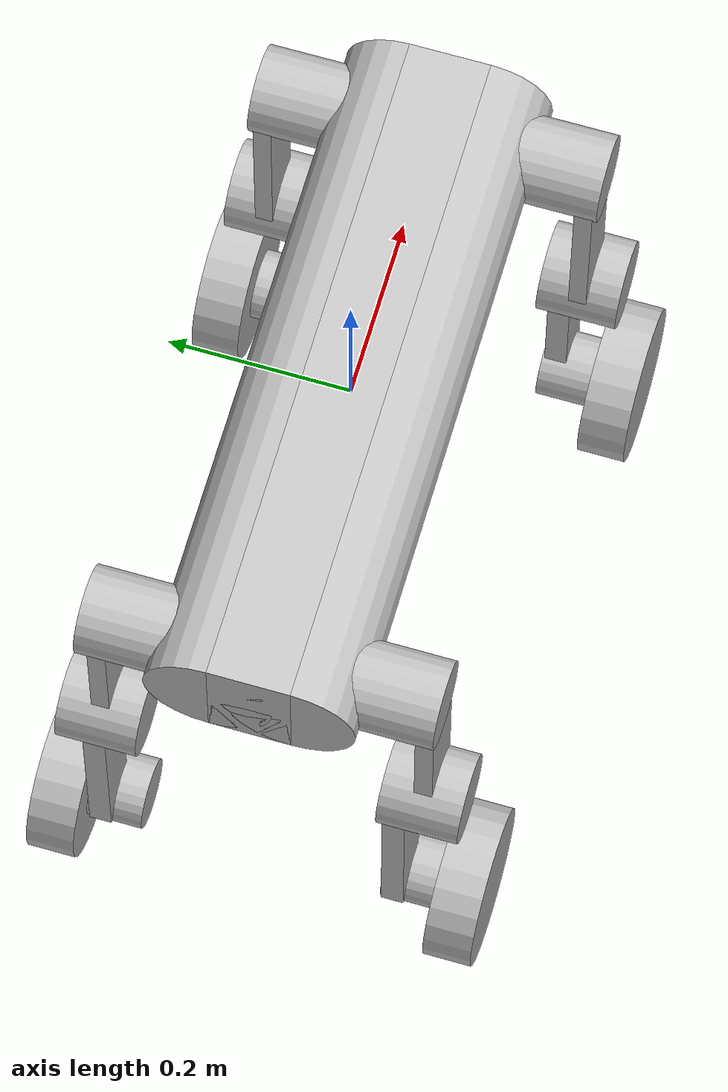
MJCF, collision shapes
<?xml version='1.0' encoding='utf-8'?>
<mujoco model="M20">
  <compiler angle="radian" meshdir=".." boundmass="1e-06" boundinertia="1e-08" />
  <asset>
    <mesh name="mesh_0" content_type="model/stl" file="meshes/base_link.STL" />
    <mesh name="mesh_1" content_type="model/stl" file="meshes/fl_hipx.STL" />
    <mesh name="mesh_2" content_type="model/stl" file="meshes/fl_hipy.STL" />
    <mesh name="mesh_3" content_type="model/stl" file="meshes/fl_knee.STL" />
    <mesh name="mesh_4" content_type="model/stl" file="meshes/fl_wheel.STL" />
    <mesh name="mesh_5" content_type="model/stl" file="meshes/fr_hipx.STL" />
    <mesh name="mesh_6" content_type="model/stl" file="meshes/fr_hipy.STL" />
    <mesh name="mesh_7" content_type="model/stl" file="meshes/fr_knee.STL" />
    <mesh name="mesh_8" content_type="model/stl" file="meshes/fr_wheel.STL" />
    <mesh name="mesh_9" content_type="model/stl" file="meshes/hl_hipx.STL" />
    <mesh name="mesh_10" content_type="model/stl" file="meshes/hl_hipy.STL" />
    <mesh name="mesh_11" content_type="model/stl" file="meshes/hl_knee.STL" />
    <mesh name="mesh_12" content_type="model/stl" file="meshes/hl_wheel.STL" />
    <mesh name="mesh_13" content_type="model/stl" file="meshes/hr_hipx.STL" />
    <mesh name="mesh_14" content_type="model/stl" file="meshes/hr_hipy.STL" />
    <mesh name="mesh_15" content_type="model/stl" file="meshes/hr_knee.STL" />
    <mesh name="mesh_16" content_type="model/stl" file="meshes/hr_wheel.STL" />
  </asset>
  <worldbody>
    <body name="base_link">
      <inertial pos="0.00355106 0.00165076 -0.00346462" quat="0.0072051 0.70717 0.00499223 0.706989" mass="15.882" diaginertia="0.563924 0.533811 0.0880743" />
      <joint type="free" />
      <geom type="mesh" contype="0" conaffinity="0" group="1" density="0" rgba="0.752941 0.752941 0.752941 1" mesh="mesh_0" />
      <geom size="0.375 0.045 0.07" type="box" rgba="0.752941 0.752941 0.752941 1" />
      <geom size="0.07 0.375" pos="0 0.045 0" quat="0.707107 0 0.707107 0" type="cylinder" rgba="0.752941 0.752941 0.752941 1" />
      <geom size="0.07 0.375" pos="0 -0.045 0" quat="0.707107 0 0.707107 0" type="cylinder" rgba="0.752941 0.752941 0.752941 1" />
      <body name="fl_hipx" pos="0.3141 0.0685 0">
        <inertial pos="-0.0111893 0.00891693 0.000405666" quat="0.583127 0.477921 0.46978 0.459196" mass="0.26136" diaginertia="0.000375361 0.000288067 0.000181572" />
        <joint name="fl_hipx_joint" pos="0 0 0" axis="-1 0 0" range="-0.611 0.436" actuatorfrcrange="-76.4 76.4" />
        <geom type="mesh" contype="0" conaffinity="0" group="1" density="0" rgba="0.752941 0.752941 0.752941 1" mesh="mesh_1" />
        <geom size="0.048 0.07" pos="0 0.055 0" quat="0.707107 0.707107 0 0" type="cylinder" rgba="0.752941 0.752941 0.752941 1" />
        <body name="fl_hipy">
          <inertial pos="-0.00199375 0.098439 -0.130664" quat="0.675046 -0.0565515 0.062233 0.732968" mass="2.493" diaginertia="0.0390587 0.0388577 0.00283061" />
          <joint name="fl_hipy_joint" pos="0 0 0" axis="0 -1 0" range="-2.583 2.286" actuatorfrcrange="-76.4 76.4" />
          <geom type="mesh" contype="0" conaffinity="0" group="1" density="0" rgba="0.752941 0.752941 0.752941 1" mesh="mesh_2" />
          <geom size="0.035 0.01 0.125" pos="-0.01 0.11 -0.125" type="box" rgba="0.752941 0.752941 0.752941 1" />
          <geom size="0.05 0.045" pos="0 0.11 -0.25" quat="0.707107 0.707107 0 0" type="cylinder" rgba="0.752941 0.752941 0.752941 1" />
          <body name="fl_knee" pos="0 0.0984 -0.25">
            <inertial pos="0.00341917 0.00269124 -0.181265" quat="0.634837 -0.0526578 0.0490086 0.76929" mass="1.26" diaginertia="0.0133811 0.0129238 0.00143607" />
            <joint name="fl_knee_joint" pos="0 0 0" axis="0 -1 0" range="-2.792 2.809" actuatorfrcrange="-76.4 76.4" />
            <geom type="mesh" contype="0" conaffinity="0" group="1" density="0" rgba="0.752941 0.752941 0.752941 1" mesh="mesh_3" />
            <geom size="0.03 0.0125 0.125" pos="0.015 -0.015 -0.125" type="box" rgba="0.752941 0.752941 0.752941 1" />
            <geom size="0.04 0.05" pos="0 0.02 -0.25" quat="0.707107 0.707107 0 0" type="cylinder" rgba="0.752941 0.752941 0.752941 1" />
            <body name="fl_wheel" pos="0 0.059676 -0.25">
              <inertial pos="-3.11398e-07 0.000279002 5.70329e-07" quat="0.707107 0 0 0.707107" mass="0.638" diaginertia="0.002853 0.001535 0.001535" />
              <joint name="fl_wheel_joint" pos="0 0 0" axis="0 -1 0" actuatorfrcrange="-21.6 21.6" />
              <geom type="mesh" contype="0" conaffinity="0" group="1" density="0" rgba="0.752941 0.752941 0.752941 1" mesh="mesh_4" />
              <geom size="0.09 0.027" quat="0.707107 0.707107 0 0" type="cylinder" rgba="0.752941 0.752941 0.752941 1" />
            </body>
          </body>
        </body>
      </body>
      <body name="fr_hipx" pos="0.3141 -0.0685 0">
        <inertial pos="-0.0110901 -0.00875035 0.000521421" quat="0.457507 0.468813 0.479224 0.584163" mass="0.26136" diaginertia="0.000375636 0.000288046 0.000181318" />
        <joint name="fr_hipx_joint" pos="0 0 0" axis="-1 0 0" range="-0.436 0.611" actuatorfrcrange="-76.4 76.4" />
        <geom type="mesh" contype="0" conaffinity="0" group="1" density="0" rgba="0.752941 0.752941 0.752941 1" mesh="mesh_5" />
        <geom size="0.048 0.07" pos="0 -0.055 0" quat="0.707107 0.707107 0 0" type="cylinder" rgba="0.752941 0.752941 0.752941 1" />
        <body name="fr_hipy">
          <inertial pos="-0.00229992 -0.0989709 -0.130925" quat="0.695336 0.0585752 -0.0588913 0.713869" mass="2.493" diaginertia="0.0394872 0.039277 0.00291879" />
          <joint name="fr_hipy_joint" pos="0 0 0" axis="0 -1 0" range="-2.583 2.286" actuatorfrcrange="-76.4 76.4" />
          <geom type="mesh" contype="0" conaffinity="0" group="1" density="0" rgba="0.752941 0.752941 0.752941 1" mesh="mesh_6" />
          <geom size="0.035 0.01 0.125" pos="-0.01 -0.11 -0.125" type="box" rgba="0.752941 0.752941 0.752941 1" />
          <geom size="0.05 0.045" pos="0 -0.11 -0.25" quat="0.707107 0.707107 0 0" type="cylinder" rgba="0.752941 0.752941 0.752941 1" />
          <body name="fr_knee" pos="0 -0.0984 -0.25">
            <inertial pos="0.00354945 -0.00247884 -0.180089" quat="0.76975 0.0474696 -0.0509581 0.634536" mass="1.26" diaginertia="0.0133732 0.0129238 0.00104502" />
            <joint name="fr_knee_joint" pos="0 0 0" axis="0 -1 0" range="-2.792 2.809" actuatorfrcrange="-76.4 76.4" />
            <geom type="mesh" contype="0" conaffinity="0" group="1" density="0" rgba="0.752941 0.752941 0.752941 1" mesh="mesh_7" />
            <geom size="0.03 0.0125 0.125" pos="0.015 0.015 -0.125" type="box" rgba="0.752941 0.752941 0.752941 1" />
            <geom size="0.04 0.05" pos="0 -0.02 -0.25" quat="0.707107 0.707107 0 0" type="cylinder" rgba="0.752941 0.752941 0.752941 1" />
            <body name="fr_wheel" pos="0 -0.059676 -0.25">
              <inertial pos="-6.47327e-07 -0.000279012 -4.6242e-08" quat="0.707107 0 0 0.707107" mass="0.638" diaginertia="0.002853 0.001535 0.001535" />
              <joint name="fr_wheel_joint" pos="0 0 0" axis="0 -1 0" actuatorfrcrange="-21.6 21.6" />
              <geom type="mesh" contype="0" conaffinity="0" group="1" density="0" rgba="0.752941 0.752941 0.752941 1" mesh="mesh_8" />
              <geom size="0.09 0.027" quat="0.707107 0.707107 0 0" type="cylinder" rgba="0.752941 0.752941 0.752941 1" />
            </body>
          </body>
        </body>
      </body>
      <body name="hl_hipx" pos="-0.3141 0.0685 0">
        <inertial pos="0.0110901 0.00875014 0.000524884" quat="0.46978 0.459196 0.583127 0.477921" mass="0.26136" diaginertia="0.000375361 0.000288067 0.000181572" />
        <joint name="hl_hipx_joint" pos="0 0 0" axis="-1 0 0" range="-0.611 0.436" actuatorfrcrange="-76.4 76.4" />
        <geom type="mesh" contype="0" conaffinity="0" group="1" density="0" rgba="0.752941 0.752941 0.752941 1" mesh="mesh_9" />
        <geom size="0.048 0.07" pos="0 0.055 0" quat="0.707107 0.707107 0 0" type="cylinder" rgba="0.752941 0.752941 0.752941 1" />
        <body name="hl_hipy">
          <inertial pos="0.00204343 0.0990227 -0.130697" quat="0.749047 -0.0627277 0.0547905 0.65726" mass="2.493" diaginertia="0.0395677 0.0393575 0.00290384" />
          <joint name="hl_hipy_joint" pos="0 0 0" axis="0 -1 0" range="-2.286 2.583" actuatorfrcrange="-76.4 76.4" />
          <geom type="mesh" contype="0" conaffinity="0" group="1" density="0" rgba="0.752941 0.752941 0.752941 1" mesh="mesh_10" />
          <geom size="0.035 0.01 0.125" pos="0.01 0.11 -0.125" type="box" rgba="0.752941 0.752941 0.752941 1" />
          <geom size="0.05 0.045" pos="0 0.11 -0.25" quat="0.707107 0.707107 0 0" type="cylinder" rgba="0.752941 0.752941 0.752941 1" />
          <body name="hl_knee" pos="0 0.0984 -0.25">
            <inertial pos="-0.00354945 0.00247885 -0.180089" quat="0.76975 -0.0474696 0.0509581 0.634536" mass="1.26" diaginertia="0.0133732 0.0129238 0.00104502" />
            <joint name="hl_knee_joint" pos="0 0 0" axis="0 -1 0" range="-2.809 2.792" actuatorfrcrange="-76.4 76.4" />
            <geom type="mesh" contype="0" conaffinity="0" group="1" density="0" rgba="0.752941 0.752941 0.752941 1" mesh="mesh_11" />
            <geom size="0.03 0.0125 0.125" pos="-0.015 0.015 -0.125" type="box" rgba="0.752941 0.752941 0.752941 1" />
            <geom size="0.04 0.05" pos="0 0.02 -0.25" quat="0.707107 0.707107 0 0" type="cylinder" rgba="0.752941 0.752941 0.752941 1" />
            <body name="hl_wheel" pos="0 0.059676 -0.25">
              <inertial pos="-6.07889e-07 0.000279009 2.1049e-07" quat="0.707107 0 0 0.707107" mass="0.638" diaginertia="0.002853 0.001535 0.001535" />
              <joint name="hl_wheel_joint" pos="0 0 0" axis="0 -1 0" actuatorfrcrange="-21.6 21.6" />
              <geom type="mesh" contype="0" conaffinity="0" group="1" density="0" rgba="0.752941 0.752941 0.752941 1" mesh="mesh_12" />
              <geom size="0.09 0.027" quat="0.707107 0.707107 0 0" type="cylinder" rgba="0.752941 0.752941 0.752941 1" />
            </body>
          </body>
        </body>
      </body>
      <body name="hr_hipx" pos="-0.3141 -0.0685 0">
        <inertial pos="0.0110902 -0.00875012 0.000524937" quat="0.477921 0.583127 0.459196 0.46978" mass="0.26136" diaginertia="0.000375361 0.000288067 0.000181572" />
        <joint name="hr_hipx_joint" pos="0 0 0" axis="-1 0 0" range="-0.436 0.611" actuatorfrcrange="-76.4 76.4" />
        <geom type="mesh" contype="0" conaffinity="0" group="1" density="0" rgba="0.752941 0.752941 0.752941 1" mesh="mesh_13" />
        <geom size="0.048 0.07" pos="0 -0.055 0" quat="0.707107 0.707107 0 0" type="cylinder" rgba="0.752941 0.752941 0.752941 1" />
        <body name="hr_hipy">
          <inertial pos="0.001992 -0.0983704 -0.130561" quat="0.675497 0.0566996 -0.0622518 0.73254" mass="2.493" diaginertia="0.0390748 0.0388767 0.0028335" />
          <joint name="hr_hipy_joint" pos="0 0 0" axis="0 -1 0" range="-2.286 2.583" actuatorfrcrange="-76.4 76.4" />
          <geom type="mesh" contype="0" conaffinity="0" group="1" density="0" rgba="0.752941 0.752941 0.752941 1" mesh="mesh_14" />
          <geom size="0.035 0.01 0.125" pos="0.01 -0.11 -0.125" type="box" rgba="0.752941 0.752941 0.752941 1" />
          <geom size="0.05 0.045" pos="0 -0.11 -0.25" quat="0.707107 0.707107 0 0" type="cylinder" rgba="0.752941 0.752941 0.752941 1" />
          <body name="hr_knee" pos="0 -0.0984 -0.25">
            <inertial pos="-0.00341053 -0.00270202 -0.181287" quat="0.634536 0.0509581 -0.0474696 0.76975" mass="1.26" diaginertia="0.0133732 0.0129238 0.00104502" />
            <joint name="hr_knee_joint" pos="0 0 0" axis="0 -1 0" range="-2.809 2.792" actuatorfrcrange="-76.4 76.4" />
            <geom type="mesh" contype="0" conaffinity="0" group="1" density="0" rgba="0.752941 0.752941 0.752941 1" mesh="mesh_15" />
            <geom size="0.03 0.0125 0.125" pos="-0.015 0.015 -0.125" type="box" rgba="0.752941 0.752941 0.752941 1" />
            <geom size="0.04 0.05" pos="0 -0.02 -0.25" quat="0.707107 0.707107 0 0" type="cylinder" rgba="0.752941 0.752941 0.752941 1" />
            <body name="hr_wheel" pos="0 -0.059676 -0.25">
              <inertial pos="6.09746e-07 -0.000279009 2.01314e-07" quat="0.707107 0 0 0.707107" mass="0.638" diaginertia="0.002853 0.001535 0.001535" />
              <joint name="hr_wheel_joint" pos="0 0 0" axis="0 -1 0" actuatorfrcrange="-21.6 21.6" />
              <geom type="mesh" contype="0" conaffinity="0" group="1" density="0" rgba="0.752941 0.752941 0.752941 1" mesh="mesh_16" />
              <geom size="0.09 0.027" quat="0.707107 0.707107 0 0" type="cylinder" rgba="0.752941 0.752941 0.752941 1" />
            </body>
          </body>
        </body>
      </body>
    </body>
  </worldbody>
</mujoco>
